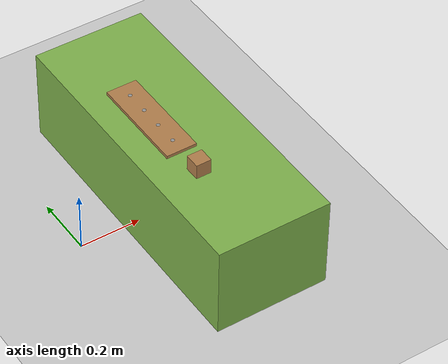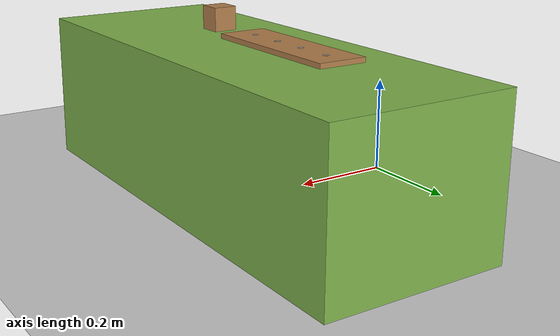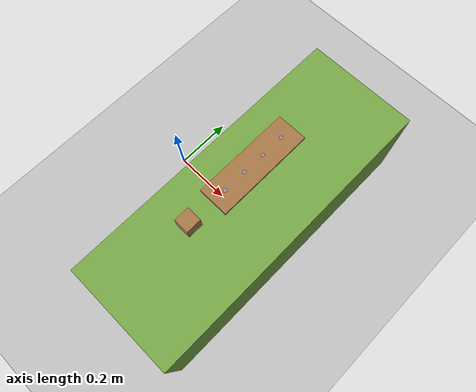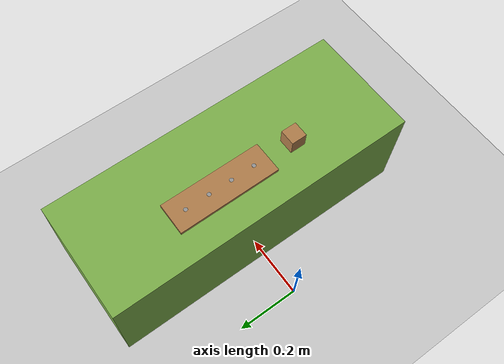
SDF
<?xml version="1.0" ?>
<sdf version="1.6">
  <world name="default">
    <include>
      <uri>model://ground_plane</uri>
    </include>

    <include>
      <uri>model://sun</uri>
    </include>

    <include>
      <uri>model://unit_box</uri>
      <pose> 0.338408 0.0 0.155488 0 0 0</pose>
    </include>

    <include>
      <uri>model://wood_cube_5cm</uri>
      <pose> 0.288978 -0.188951 0.310979 0 0 0</pose>
    </include>

    <include>
      <uri>model://wooden_board</uri>
      <pose> 0.288998 0.066182 0.31073 0 0 0</pose>
    </include>

    <physics type="ode">
      <real_time_update_rate>1000.0</real_time_update_rate>
    </physics>

    <gravity>
      0.0 0.0 -9.8
    </gravity>

    <gui fullscreen='0'>
    </gui>

  </world>
</sdf>

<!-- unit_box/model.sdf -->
<sdf version='1.7'>
  <model name='unit_box'>
    <link name='link'>
      <inertial>
        <mass>1</mass>
        <inertia>
          <ixx>0.166667</ixx>
          <ixy>0</ixy>
          <ixz>0</ixz>
          <iyy>0.166667</iyy>
          <iyz>0</iyz>
          <izz>0.166667</izz>
        </inertia>
        <pose>0 0 0 0 -0 0</pose>
      </inertial>
      <self_collide>0</self_collide>
      <enable_wind>0</enable_wind>
      <kinematic>0</kinematic>
      <pose>0 0 0 0 -0 0</pose>
      <gravity>1</gravity>
      <visual name='visual'>
        <geometry>
          <box>
            <size>0.375399 1 0.310976</size>
          </box>
        </geometry>
        <material>
          <script>
            <name>Gazebo/Grey</name>
            <uri>file://media/materials/scripts/gazebo.material</uri>
          </script>
          <shader type='pixel'>
            <normal_map>__default__</normal_map>
          </shader>
          <specular>0.1 0.6 0.6 1</specular>
          <ambient>0.2 0.3 0.8 1</ambient>
          <diffuse>0.5 0.7 0.3 1</diffuse>
          <emissive>0.5 0.4 0.6 1</emissive>
        </material>
        <pose>0 0 0 0 -0 0</pose>
        <transparency>0</transparency>
        <cast_shadows>1</cast_shadows>
      </visual>
      <collision name='collision'>
        <laser_retro>0</laser_retro>
        <max_contacts>10</max_contacts>
        <pose>0 0 0 0 -0 0</pose>
        <geometry>
          <box>
            <size>0.375399 1 0.310976</size>
          </box>
        </geometry>
        <surface>
          <friction>
            <ode>
              <mu>1</mu>
              <mu2>1</mu2>
              <fdir1>0 0 0</fdir1>
              <slip1>0</slip1>
              <slip2>0</slip2>
            </ode>
            <torsional>
              <coefficient>1</coefficient>
              <patch_radius>0</patch_radius>
              <surface_radius>0</surface_radius>
              <use_patch_radius>1</use_patch_radius>
              <ode>
                <slip>0</slip>
              </ode>
            </torsional>
          </friction>
          <bounce>
            <restitution_coefficient>0</restitution_coefficient>
            <threshold>1e+06</threshold>
          </bounce>
          <contact>
            <collide_without_contact>0</collide_without_contact>
            <collide_without_contact_bitmask>1</collide_without_contact_bitmask>
            <collide_bitmask>1</collide_bitmask>
            <ode>
              <soft_cfm>0</soft_cfm>
              <soft_erp>0.2</soft_erp>
              <kp>1e+13</kp>
              <kd>1</kd>
              <max_vel>0.01</max_vel>
              <min_depth>0</min_depth>
            </ode>
            <bullet>
              <split_impulse>1</split_impulse>
              <split_impulse_penetration_threshold>-0.01</split_impulse_penetration_threshold>
              <soft_cfm>0</soft_cfm>
              <soft_erp>0.2</soft_erp>
              <kp>1e+13</kp>
              <kd>1</kd>
            </bullet>
          </contact>
        </surface>
      </collision>
    </link>
    <static>1</static>
    <allow_auto_disable>1</allow_auto_disable>
  </model>
</sdf>

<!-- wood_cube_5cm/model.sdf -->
<sdf version='1.7'>
  <model name='wood_cube_5cm'>
    <link name='link'>
      <pose>0 0 0.025 0 -0 0</pose>
      <inertial>
        <mass>0.0565</mass>
        <inertia>
          <ixx>2.35417e-05</ixx>
          <ixy>0</ixy>
          <ixz>0</ixz>
          <iyy>2.35417e-05</iyy>
          <iyz>0</iyz>
          <izz>2.35417e-05</izz>
        </inertia>
        <pose>0 0 0 0 -0 0</pose>
      </inertial>
      <self_collide>0</self_collide>
      <enable_wind>0</enable_wind>
      <kinematic>0</kinematic>
      <visual name='visual'>
        <geometry>
          <box>
            <size>0.05 0.05 0.05</size>
          </box>
        </geometry>
        <material>
          <script>
            <uri>file://media/materials/scripts/gazebo.material</uri>
            <name>Gazebo/Wood</name>
          </script>
          <shader type='pixel'/>
        </material>
        <pose>0 0 0 0 -0 0</pose>
        <transparency>0</transparency>
        <cast_shadows>1</cast_shadows>
      </visual>
      <collision name='collision'>
        <laser_retro>0</laser_retro>
        <max_contacts>10</max_contacts>
        <pose>0 0 0 0 -0 0</pose>
        <geometry>
          <box>
            <size>0.05 0.05 0.05</size>
          </box>
        </geometry>
        <surface>
          <friction>
            <ode>
              <mu>1</mu>
              <mu2>1</mu2>
              <fdir1>0 0 0</fdir1>
              <slip1>0</slip1>
              <slip2>0</slip2>
            </ode>
            <torsional>
              <coefficient>1</coefficient>
              <patch_radius>0</patch_radius>
              <surface_radius>0.05</surface_radius>
              <use_patch_radius>0</use_patch_radius>
              <ode>
                <slip>0</slip>
              </ode>
            </torsional>
          </friction>
          <bounce>
            <restitution_coefficient>0</restitution_coefficient>
            <threshold>1e+06</threshold>
          </bounce>
          <contact>
            <collide_without_contact>0</collide_without_contact>
            <collide_without_contact_bitmask>1</collide_without_contact_bitmask>
            <collide_bitmask>1</collide_bitmask>
            <ode>
              <soft_cfm>0</soft_cfm>
              <soft_erp>0.2</soft_erp>
              <kp>100000</kp>
              <kd>1</kd>
              <max_vel>1</max_vel>
              <min_depth>0.001</min_depth>
            </ode>
            <bullet>
              <split_impulse>1</split_impulse>
              <split_impulse_penetration_threshold>-0.01</split_impulse_penetration_threshold>
              <soft_cfm>0</soft_cfm>
              <soft_erp>0.2</soft_erp>
              <kp>100000</kp>
              <kd>1</kd>
            </bullet>
          </contact>
        </surface>
      </collision>
    </link>
    <static>0</static>
    <allow_auto_disable>1</allow_auto_disable>
  </model>
</sdf>

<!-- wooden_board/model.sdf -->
<sdf version='1.7'>
  <model name='wooden_board'>
    <link name='base'>
      <pose>-0 -0 0.00523 0 -0 0</pose>
      <inertial>
        <mass>0.2765</mass>
        <inertia>
          <ixx>0.0025148</ixx>
          <ixy>0</ixy>
          <ixz>0</ixz>
          <iyy>0.00024037</iyy>
          <iyz>0</iyz>
          <izz>0.00275013</izz>
        </inertia>
        <pose>0 0 0 0 -0 0</pose>
      </inertial>
      <self_collide>0</self_collide>
      <enable_wind>0</enable_wind>
      <kinematic>0</kinematic>
      <visual name='visual'>
        <geometry>
          <box>
            <size>0.1016 0.3302 0.01046</size>
          </box>
        </geometry>
        <material>
          <script>
            <uri>file://media/materials/scripts/gazebo.material</uri>
            <name>Gazebo/Wood</name>
          </script>
          <shader type='pixel'/>
        </material>
        <pose>0 0 0 0 -0 0</pose>
        <transparency>0</transparency>
        <cast_shadows>1</cast_shadows>
      </visual>
      <visual name='tee_nut_1'>
        <pose>0 -0.116 0 0 -0 0</pose>
        <geometry>
          <cylinder>
            <radius>0.00635</radius>
            <length>0.0105646</length>
          </cylinder>
        </geometry>
        <material>
          <script>
            <uri>file://media/materials/scripts/gazebo.material</uri>
            <name>Gazebo/Grey</name>
          </script>
          <shader type='pixel'/>
        </material>
        <transparency>0</transparency>
        <cast_shadows>1</cast_shadows>
      </visual>
      <visual name='tee_nut_3'>
        <pose>0 0.038 0 0 -0 0</pose>
        <geometry>
          <cylinder>
            <radius>0.00635</radius>
            <length>0.0105646</length>
          </cylinder>
        </geometry>
        <material>
          <script>
            <uri>file://media/materials/scripts/gazebo.material</uri>
            <name>Gazebo/Grey</name>
          </script>
          <shader type='pixel'/>
        </material>
        <transparency>0</transparency>
        <cast_shadows>1</cast_shadows>
      </visual>
      <visual name='tee_nut_2'>
        <pose>0 -0.038 0 0 -0 0</pose>
        <geometry>
          <cylinder>
            <radius>0.00635</radius>
            <length>0.0105646</length>
          </cylinder>
        </geometry>
        <material>
          <script>
            <uri>file://media/materials/scripts/gazebo.material</uri>
            <name>Gazebo/Grey</name>
          </script>
          <shader type='pixel'/>
        </material>
        <transparency>0</transparency>
        <cast_shadows>1</cast_shadows>
      </visual>
      <visual name='tee_nut_4'>
        <pose>0 0.116 0 0 -0 0</pose>
        <geometry>
          <cylinder>
            <radius>0.00635</radius>
            <length>0.0105646</length>
          </cylinder>
        </geometry>
        <material>
          <script>
            <uri>file://media/materials/scripts/gazebo.material</uri>
            <name>Gazebo/Grey</name>
          </script>
          <shader type='pixel'/>
        </material>
        <transparency>0</transparency>
        <cast_shadows>1</cast_shadows>
      </visual>
      <collision name='collision'>
        <laser_retro>0</laser_retro>
        <max_contacts>10</max_contacts>
        <pose>0 0 0 0 -0 0</pose>
        <geometry>
          <box>
            <size>0.1016 0.3302 0.01046</size>
          </box>
        </geometry>
        <surface>
          <friction>
            <ode>
              <mu>1</mu>
              <mu2>1</mu2>
              <fdir1>0 0 0</fdir1>
              <slip1>0</slip1>
              <slip2>0</slip2>
            </ode>
            <torsional>
              <coefficient>1</coefficient>
              <patch_radius>0</patch_radius>
              <surface_radius>0.01</surface_radius>
              <use_patch_radius>0</use_patch_radius>
              <ode>
                <slip>0</slip>
              </ode>
            </torsional>
          </friction>
          <bounce>
            <restitution_coefficient>0</restitution_coefficient>
            <threshold>1e+06</threshold>
          </bounce>
          <contact>
            <collide_without_contact>0</collide_without_contact>
            <collide_without_contact_bitmask>1</collide_without_contact_bitmask>
            <collide_bitmask>1</collide_bitmask>
            <ode>
              <soft_cfm>0</soft_cfm>
              <soft_erp>0.2</soft_erp>
              <kp>100000</kp>
              <kd>100</kd>
              <max_vel>100</max_vel>
              <min_depth>0.001</min_depth>
            </ode>
            <bullet>
              <split_impulse>1</split_impulse>
              <split_impulse_penetration_threshold>-0.01</split_impulse_penetration_threshold>
              <soft_cfm>0</soft_cfm>
              <soft_erp>0.2</soft_erp>
              <kp>100000</kp>
              <kd>100</kd>
            </bullet>
          </contact>
        </surface>
      </collision>
    </link>
    <static>0</static>
    <allow_auto_disable>1</allow_auto_disable>
  </model>
</sdf>
